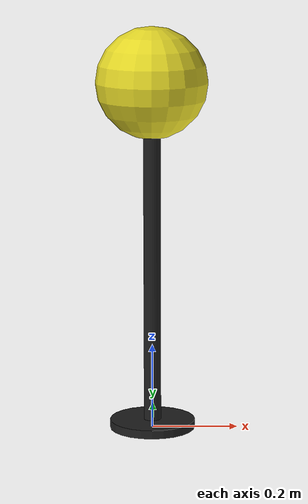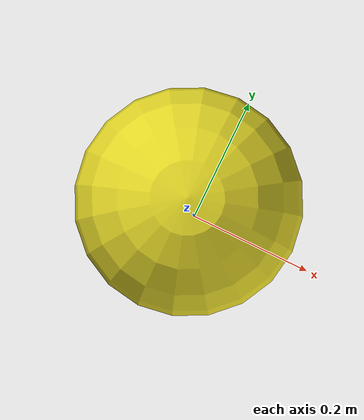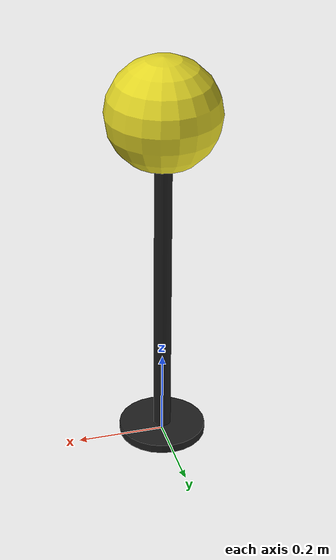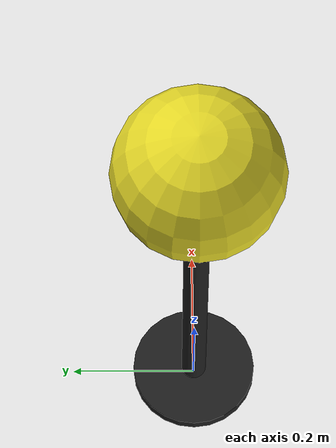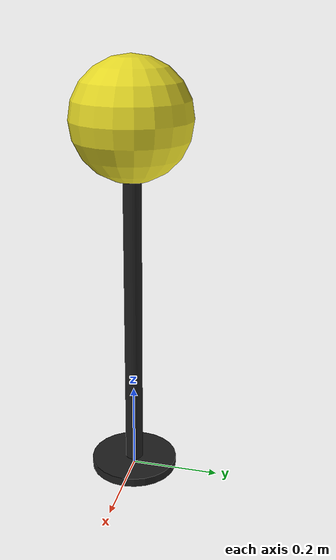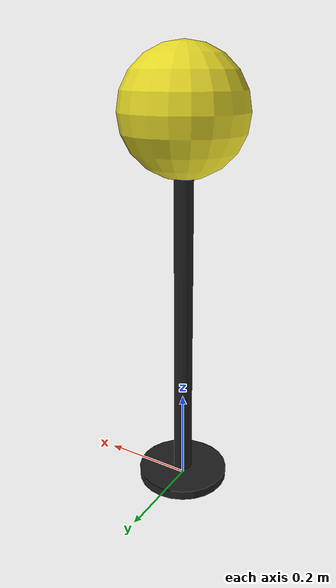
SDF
<?xml version="1.0" ?>

<sdf version="1.5">
  <model name="yellow_buoy">
    <static>false</static>
    <link name="link">

      <collision name="flare">
        <pose>0 0 0.75 0 0 0</pose>
        <geometry>
          <cylinder>
            <radius>0.125</radius>
            <length>1.5</length>
          </cylinder>
        </geometry>
      </collision>

      <visual name="flare">
        <cast_shadows>false</cast_shadows>
        <pose>0 0 0.4 0 0 0</pose>
        <geometry>
          <cylinder>
            <radius>0.02</radius>
            <length>0.8</length>
          </cylinder>
        </geometry>
        <material>
          <script>
            <uri>file://media/materials/scripts/colors.material</uri>
            <name>SAUVC/Black</name>
          </script>
        </material>
      </visual>

      <visual name="ball">
        <cast_shadows>false</cast_shadows>
        <pose>0 0 0.82 0 0 0</pose>
        <geometry>
          <sphere>
            <radius>0.13</radius>
          </sphere>
        </geometry>
        <material>
          <script>
            <uri>file://media/materials/scripts/colors.material</uri>
            <name>SAUVC/Yellow</name>
          </script>
        </material>
      </visual>

      <visual name="stand">
        <cast_shadows>false</cast_shadows>
        <pose>0 0 0.01 0 0 0</pose>
        <geometry>
          <cylinder>
            <radius>0.1</radius>
            <length>0.02</length>
          </cylinder>
        </geometry>
        <material>
          <script>
            <uri>file://media/materials/scripts/colors.material</uri>
            <name>SAUVC/Black</name>
          </script>
        </material>
      </visual>

    </link>
  </model>
</sdf>
